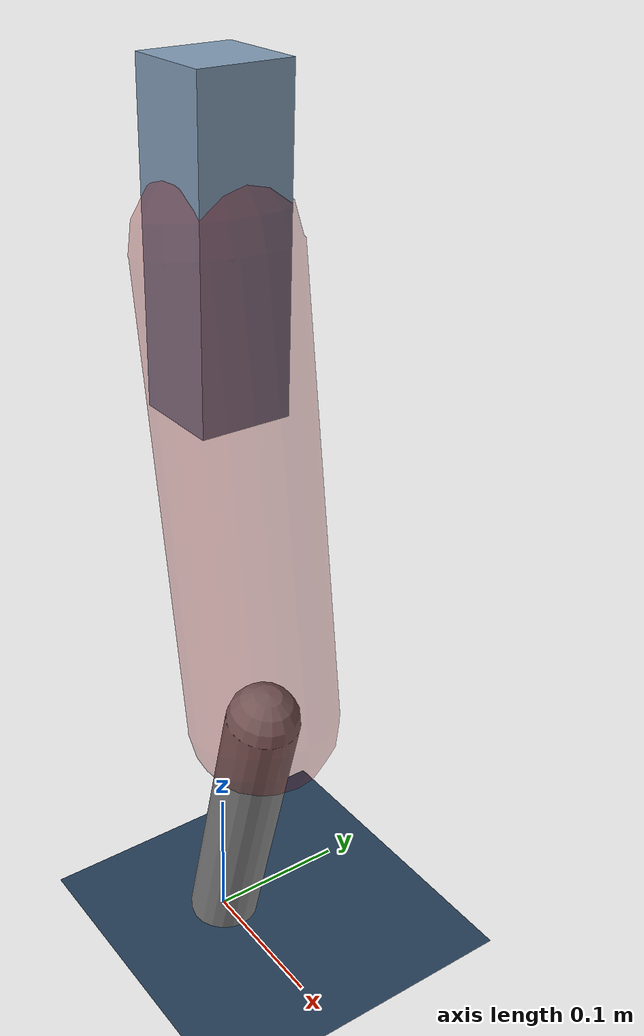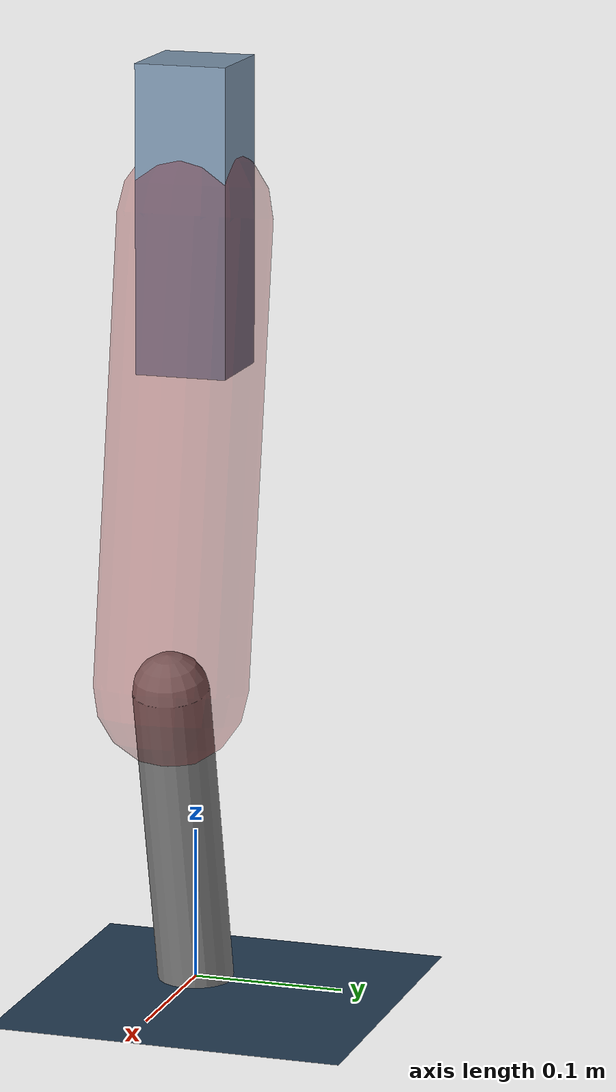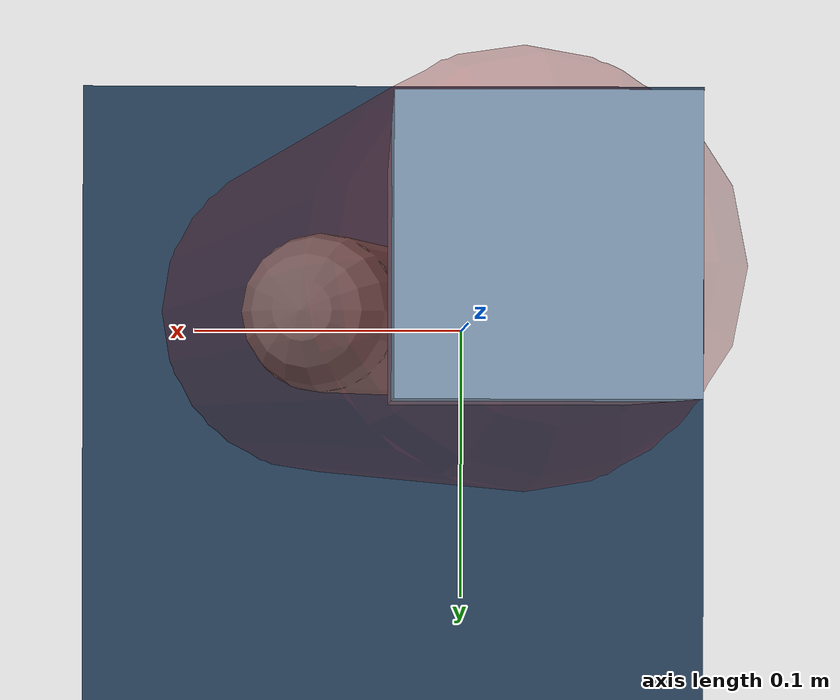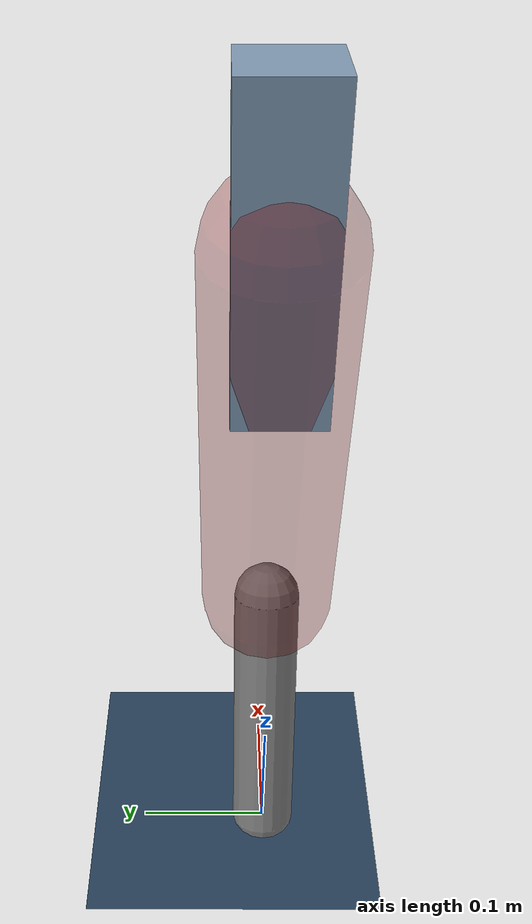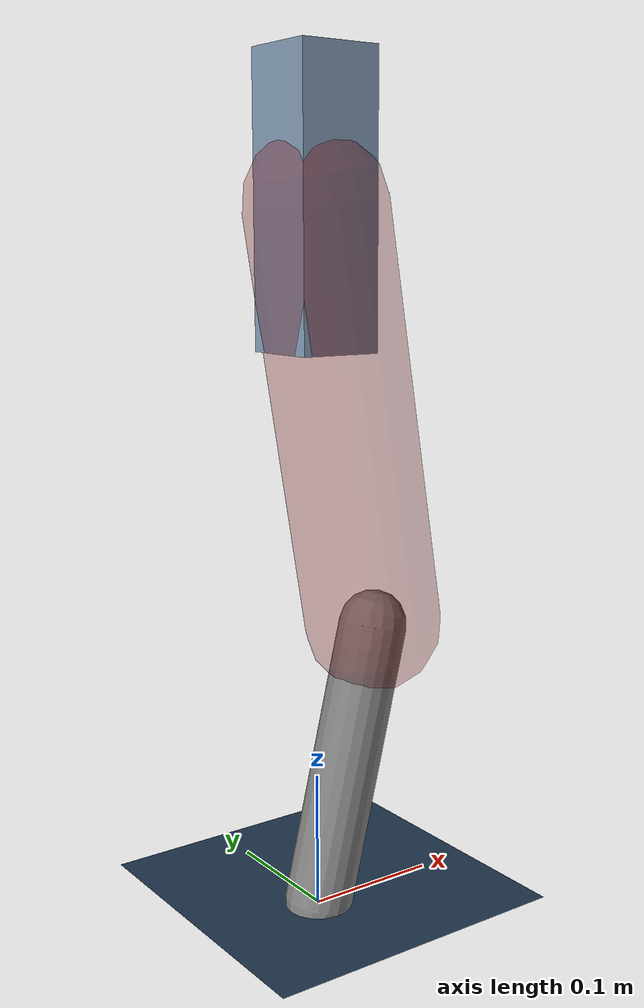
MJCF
<mujoco model="Hopper2D">
	<compiler inertiafromgeom="true" angle="radian" />
	<option timestep="0.001" integrator="implicit" cone="elliptic" solver="Newton" tolerance="1e-10" />

	<default>
		<geom contype="1" conaffinity="1" condim="3" friction="2 0.005 0.0001" solref="0.005 1" />
		<joint limited="true" damping="0.1" />
	</default>

	<asset>
		<texture name="skybox" type="skybox" builtin="gradient" rgb1=".4 .6 .8" rgb2="0 0 0" width="800" height="800" />
		<texture name="grid" type="2d" builtin="checker" rgb1=".1 .2 .3" rgb2=".2 .3 .4" width="300" height="300" mark="edge" markrgb=".2 .3 .4" />
		<material name="ground" texture="grid" texrepeat="1 1" texuniform="true" reflectance="0.1" />
		<material name="leg" rgba="0.5 0.6 0.7 1" />
	</asset>

	<worldbody>

		<geom name="floor" type="plane" size="5 5 0.25" material="ground" />

		<light directional="false" diffuse="0.8 0.8 0.8" specular="0.3 0.3 0.3" pos="0 0 2" dir="0 0 -1" />
		<light mode="targetbodycom" target="base" directional="false" diffuse="0.8 0.8 0.8" specular="0.3 0.3 0.3" pos="0 0 2" dir="0 0 -1" />

		<camera name="fixed" pos="0 -2 1" xyaxes="1 0 0 0 0 1" />
		<camera name="tracking" mode="trackcom" pos="0 -3 1" />

		<body name="root" pos="0 0 0.5083593118286253">
			<joint name="slide_x" type="slide" axis="1 0 0" range="-100 100" />
			<joint name="slide_z" type="slide" axis="0 0 1" range="0 10" />

			<body name="base" pos="0 0 0">
				<geom name="torso" type="box" size="0.03 0.03 0.1" mass="3.011" material="leg" />

				<body name="link1" pos="0 0 0" euler="0 1.4066010509467362 0">
					<joint type="hinge" axis="0 -1 0" pos="0 0 0" name="hinge1" limited="true" range="-3.14 3.14" stiffness="0" damping="0.1" />
					<geom name="thigh" type="capsule" fromto="0 0 0 0.30489364546742814 0 0" size="0.05" rgba="0.5 0 0 0.3" mass="1.002012842762056" />

					<body name="link2" pos="0.30489364546742814 0 0" euler="0 0.3998382482427656 0">
						<joint type="hinge" axis="0 -1 0" pos="0 0 0" name="hinge2" limited="true" range="-3.14 3.14" stiffness="0" damping="0.1" />
						<geom name="shank" type="capsule" fromto="0 0 0 0.2134656663611971 0 0" size="0.025" mass="0.4122190997250774" />

					</body>
				</body>
			</body>
		</body>
	</worldbody>

	<actuator>
		<motor name="torque1" joint="hinge1" ctrlrange="-48.2094690227072 48.2094690227072" ctrllimited="true" gear="1" />
		<motor name="torque2" joint="hinge2" ctrlrange="-178.37832819502887 178.37832819502887" ctrllimited="true" gear="1" />
	</actuator>
</mujoco>
